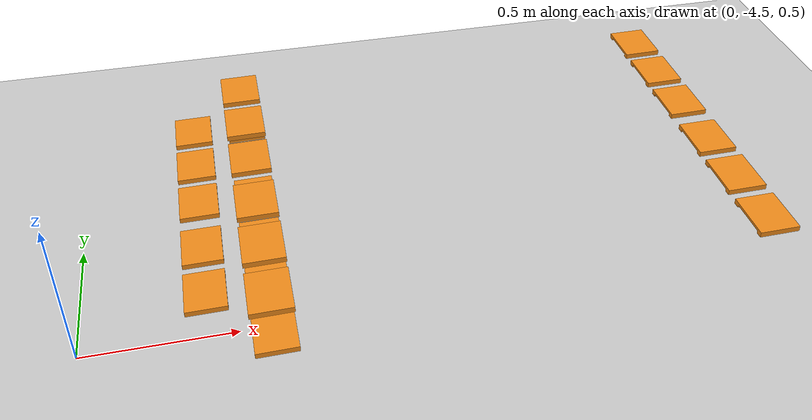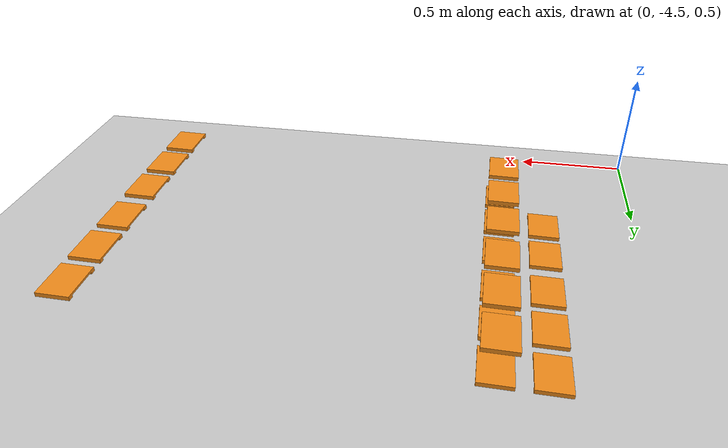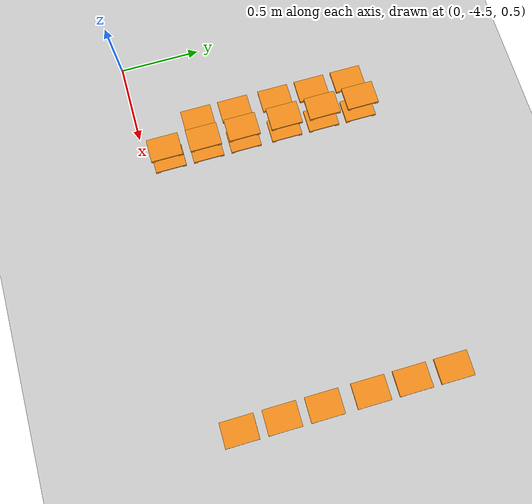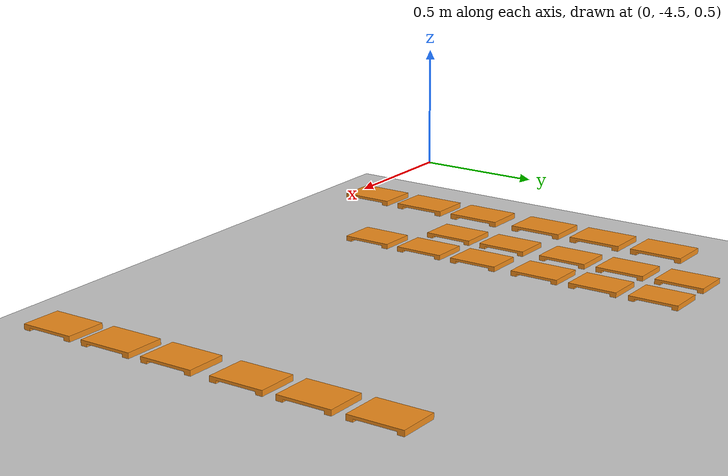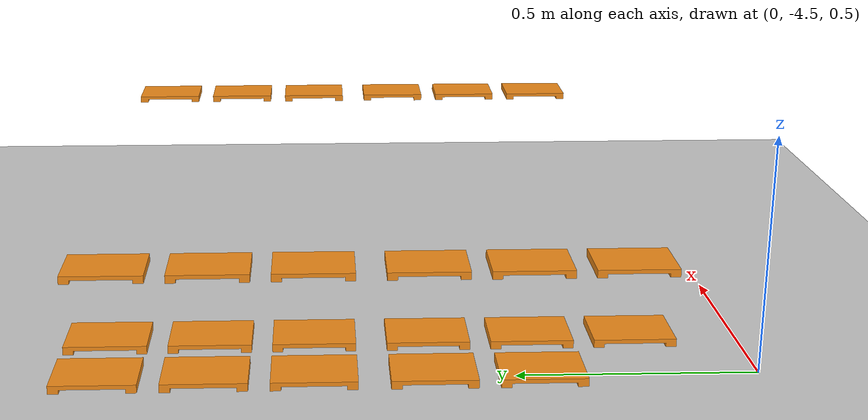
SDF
<sdf version="1.7">
 <world name="default">
  <model name="ground_plane">
   <static>1</static>
   <link name="link">
    <collision name="collision">
     <geometry><plane><normal>0 0 1</normal><size>100 100</size></plane></geometry>
     <surface>
      <contact><collide_bitmask>65535</collide_bitmask></contact>
      <friction><ode><mu>1</mu><mu2>1</mu2></ode></friction>
     </surface>
    </collision>
    <visual name="visual">
     <cast_shadows>0</cast_shadows>
     <geometry><plane><normal>0 0 1</normal><size>100 100</size></plane></geometry>
     <material>
      <script><uri>file://media/materials/scripts/gazebo.material</uri><name>Gazebo/Grey</name></script>
     </material>
    </visual>
   </link>
  </model>
  <model name="pallet_169">
   <pose>0.603676 -3.088 0.511043 -0 -0.012323 -7e-06</pose>
   <link name="link">
    <inertial>
     <pose>0 0 0 0 -0 1.571</pose>
     <inertia>
      <ixx>0.00220983</ixx>
      <ixy>0</ixy>
      <ixz>0</ixz>
      <iyy>0.00128087</iyy>
      <iyz>0</iyz>
      <izz>0.00244903</izz>
     </inertia>
     <mass>0.01</mass>
    </inertial>
    <visual name="visual1">
     <cast_shadows>0</cast_shadows>
     <geometry><mesh><uri>model://pallet/meshes/pallet.stl</uri></mesh></geometry>
     <material>
      <script><uri>file://media/materials/scripts/gazebo.material</uri><name>Gazebo/Orange</name></script>
      <shader type="pixel"><normal_map>__default__</normal_map></shader>
      <emissive>0 0 0 1</emissive>
     </material>
     <pose>0 0 -0 0 -0 1.571</pose>
    </visual>
    <collision name="collision_0">
     <pose>0 0 0 0 -0 1.571</pose>
     <geometry><mesh><uri>model://pallet/meshes/pallet.stl</uri></mesh></geometry>
     <surface>
      <friction>
       <ode><mu>1</mu><mu2>1</mu2><fdir1>0 0 0</fdir1><slip1>0</slip1><slip2>0</slip2></ode>
       <torsional>
        <coefficient>1</coefficient>
        <patch_radius>0</patch_radius>
        <surface_radius>0</surface_radius>
        <use_patch_radius>1</use_patch_radius>
        <ode><slip>0</slip></ode>
       </torsional>
      </friction>
      <bounce><restitution_coefficient>0</restitution_coefficient><threshold>1e+06</threshold></bounce>
      <contact>
       <collide_without_contact>0</collide_without_contact>
       <collide_without_contact_bitmask>1</collide_without_contact_bitmask>
       <collide_bitmask>1</collide_bitmask>
       <ode>
        <soft_cfm>0</soft_cfm>
        <soft_erp>0.2</soft_erp>
        <kp>1e+13</kp>
        <kd>1</kd>
        <max_vel>0.01</max_vel>
        <min_depth>0</min_depth>
       </ode>
       <bullet>
        <split_impulse>1</split_impulse>
        <split_impulse_penetration_threshold>-0.01</split_impulse_penetration_threshold>
        <soft_cfm>0</soft_cfm>
        <soft_erp>0.2</soft_erp>
        <kp>1e+13</kp>
        <kd>1</kd>
       </bullet>
      </contact>
     </surface>
    </collision>
   </link>
   <static>0</static>
  </model>
  <model name="pallet_170">
   <pose>0.603676 -3.338 0.511039 4.2e-05 -0.012317 -3e-06</pose>
   <link name="link">
    <inertial>
     <pose>0 0 0 0 -0 1.571</pose>
     <inertia>
      <ixx>0.00220983</ixx>
      <ixy>0</ixy>
      <ixz>0</ixz>
      <iyy>0.00128087</iyy>
      <iyz>0</iyz>
      <izz>0.00244903</izz>
     </inertia>
     <mass>0.01</mass>
    </inertial>
    <visual name="visual1">
     <cast_shadows>0</cast_shadows>
     <geometry><mesh><uri>model://pallet/meshes/pallet.stl</uri></mesh></geometry>
     <material>
      <script><uri>file://media/materials/scripts/gazebo.material</uri><name>Gazebo/Orange</name></script>
      <shader type="pixel"><normal_map>__default__</normal_map></shader>
      <emissive>0 0 0 1</emissive>
     </material>
     <pose>0 0 -0 0 -0 1.571</pose>
    </visual>
    <collision name="collision_0">
     <pose>0 0 0 0 -0 1.571</pose>
     <geometry><mesh><uri>model://pallet/meshes/pallet.stl</uri></mesh></geometry>
     <surface>
      <friction>
       <ode><mu>1</mu><mu2>1</mu2><fdir1>0 0 0</fdir1><slip1>0</slip1><slip2>0</slip2></ode>
       <torsional>
        <coefficient>1</coefficient>
        <patch_radius>0</patch_radius>
        <surface_radius>0</surface_radius>
        <use_patch_radius>1</use_patch_radius>
        <ode><slip>0</slip></ode>
       </torsional>
      </friction>
      <bounce><restitution_coefficient>0</restitution_coefficient><threshold>1e+06</threshold></bounce>
      <contact>
       <collide_without_contact>0</collide_without_contact>
       <collide_without_contact_bitmask>1</collide_without_contact_bitmask>
       <collide_bitmask>1</collide_bitmask>
       <ode>
        <soft_cfm>0</soft_cfm>
        <soft_erp>0.2</soft_erp>
        <kp>1e+13</kp>
        <kd>1</kd>
        <max_vel>0.01</max_vel>
        <min_depth>0</min_depth>
       </ode>
       <bullet>
        <split_impulse>1</split_impulse>
        <split_impulse_penetration_threshold>-0.01</split_impulse_penetration_threshold>
        <soft_cfm>0</soft_cfm>
        <soft_erp>0.2</soft_erp>
        <kp>1e+13</kp>
        <kd>1</kd>
       </bullet>
      </contact>
     </surface>
    </collision>
   </link>
   <static>0</static>
  </model>
  <model name="pallet_171">
   <pose>0.603678 -3.588 0.511038 3.6e-05 -0.012316 3e-06</pose>
   <link name="link">
    <inertial>
     <pose>0 0 0 0 -0 1.571</pose>
     <inertia>
      <ixx>0.00220983</ixx>
      <ixy>0</ixy>
      <ixz>0</ixz>
      <iyy>0.00128087</iyy>
      <iyz>0</iyz>
      <izz>0.00244903</izz>
     </inertia>
     <mass>0.01</mass>
    </inertial>
    <visual name="visual1">
     <cast_shadows>0</cast_shadows>
     <geometry><mesh><uri>model://pallet/meshes/pallet.stl</uri></mesh></geometry>
     <material>
      <script><uri>file://media/materials/scripts/gazebo.material</uri><name>Gazebo/Orange</name></script>
      <shader type="pixel"><normal_map>__default__</normal_map></shader>
      <emissive>0 0 0 1</emissive>
     </material>
     <pose>0 0 -0 0 -0 1.571</pose>
    </visual>
    <collision name="collision_0">
     <pose>0 0 0 0 -0 1.571</pose>
     <geometry><mesh><uri>model://pallet/meshes/pallet.stl</uri></mesh></geometry>
     <surface>
      <friction>
       <ode><mu>1</mu><mu2>1</mu2><fdir1>0 0 0</fdir1><slip1>0</slip1><slip2>0</slip2></ode>
       <torsional>
        <coefficient>1</coefficient>
        <patch_radius>0</patch_radius>
        <surface_radius>0</surface_radius>
        <use_patch_radius>1</use_patch_radius>
        <ode><slip>0</slip></ode>
       </torsional>
      </friction>
      <bounce><restitution_coefficient>0</restitution_coefficient><threshold>1e+06</threshold></bounce>
      <contact>
       <collide_without_contact>0</collide_without_contact>
       <collide_without_contact_bitmask>1</collide_without_contact_bitmask>
       <collide_bitmask>1</collide_bitmask>
       <ode>
        <soft_cfm>0</soft_cfm>
        <soft_erp>0.2</soft_erp>
        <kp>1e+13</kp>
        <kd>1</kd>
        <max_vel>0.01</max_vel>
        <min_depth>0</min_depth>
       </ode>
       <bullet>
        <split_impulse>1</split_impulse>
        <split_impulse_penetration_threshold>-0.01</split_impulse_penetration_threshold>
        <soft_cfm>0</soft_cfm>
        <soft_erp>0.2</soft_erp>
        <kp>1e+13</kp>
        <kd>1</kd>
       </bullet>
      </contact>
     </surface>
    </collision>
   </link>
   <static>0</static>
  </model>
  <model name="pallet_172">
   <pose>0.603681 -3.8625 0.511034 3.7e-05 -0.012316 4e-06</pose>
   <link name="link">
    <inertial>
     <pose>0 0 0 0 -0 1.571</pose>
     <inertia>
      <ixx>0.00220983</ixx>
      <ixy>0</ixy>
      <ixz>0</ixz>
      <iyy>0.00128087</iyy>
      <iyz>0</iyz>
      <izz>0.00244903</izz>
     </inertia>
     <mass>0.01</mass>
    </inertial>
    <visual name="visual1">
     <cast_shadows>0</cast_shadows>
     <geometry><mesh><uri>model://pallet/meshes/pallet.stl</uri></mesh></geometry>
     <material>
      <script><uri>file://media/materials/scripts/gazebo.material</uri><name>Gazebo/Orange</name></script>
      <shader type="pixel"><normal_map>__default__</normal_map></shader>
      <emissive>0 0 0 1</emissive>
     </material>
     <pose>0 0 -0 0 -0 1.571</pose>
    </visual>
    <collision name="collision_0">
     <pose>0 0 0 0 -0 1.571</pose>
     <geometry><mesh><uri>model://pallet/meshes/pallet.stl</uri></mesh></geometry>
     <surface>
      <friction>
       <ode><mu>1</mu><mu2>1</mu2><fdir1>0 0 0</fdir1><slip1>0</slip1><slip2>0</slip2></ode>
       <torsional>
        <coefficient>1</coefficient>
        <patch_radius>0</patch_radius>
        <surface_radius>0</surface_radius>
        <use_patch_radius>1</use_patch_radius>
        <ode><slip>0</slip></ode>
       </torsional>
      </friction>
      <bounce><restitution_coefficient>0</restitution_coefficient><threshold>1e+06</threshold></bounce>
      <contact>
       <collide_without_contact>0</collide_without_contact>
       <collide_without_contact_bitmask>1</collide_without_contact_bitmask>
       <collide_bitmask>1</collide_bitmask>
       <ode>
        <soft_cfm>0</soft_cfm>
        <soft_erp>0.2</soft_erp>
        <kp>1e+13</kp>
        <kd>1</kd>
        <max_vel>0.01</max_vel>
        <min_depth>0</min_depth>
       </ode>
       <bullet>
        <split_impulse>1</split_impulse>
        <split_impulse_penetration_threshold>-0.01</split_impulse_penetration_threshold>
        <soft_cfm>0</soft_cfm>
        <soft_erp>0.2</soft_erp>
        <kp>1e+13</kp>
        <kd>1</kd>
       </bullet>
      </contact>
     </surface>
    </collision>
   </link>
   <static>0</static>
  </model>
  <model name="pallet_173">
   <pose>0.603684 -4.1125 0.511038 2.3e-05 -0.012318 2e-06</pose>
   <link name="link">
    <inertial>
     <pose>0 0 0 0 -0 1.571</pose>
     <inertia>
      <ixx>0.00220983</ixx>
      <ixy>0</ixy>
      <ixz>0</ixz>
      <iyy>0.00128087</iyy>
      <iyz>0</iyz>
      <izz>0.00244903</izz>
     </inertia>
     <mass>0.01</mass>
    </inertial>
    <visual name="visual1">
     <cast_shadows>0</cast_shadows>
     <geometry><mesh><uri>model://pallet/meshes/pallet.stl</uri></mesh></geometry>
     <material>
      <script><uri>file://media/materials/scripts/gazebo.material</uri><name>Gazebo/Orange</name></script>
      <shader type="pixel"><normal_map>__default__</normal_map></shader>
      <emissive>0 0 0 1</emissive>
     </material>
     <pose>0 0 -0 0 -0 1.571</pose>
    </visual>
    <collision name="collision_0">
     <pose>0 0 0 0 -0 1.571</pose>
     <geometry><mesh><uri>model://pallet/meshes/pallet.stl</uri></mesh></geometry>
     <surface>
      <friction>
       <ode><mu>1</mu><mu2>1</mu2><fdir1>0 0 0</fdir1><slip1>0</slip1><slip2>0</slip2></ode>
       <torsional>
        <coefficient>1</coefficient>
        <patch_radius>0</patch_radius>
        <surface_radius>0</surface_radius>
        <use_patch_radius>1</use_patch_radius>
        <ode><slip>0</slip></ode>
       </torsional>
      </friction>
      <bounce><restitution_coefficient>0</restitution_coefficient><threshold>1e+06</threshold></bounce>
      <contact>
       <collide_without_contact>0</collide_without_contact>
       <collide_without_contact_bitmask>1</collide_without_contact_bitmask>
       <collide_bitmask>1</collide_bitmask>
       <ode>
        <soft_cfm>0</soft_cfm>
        <soft_erp>0.2</soft_erp>
        <kp>1e+13</kp>
        <kd>1</kd>
        <max_vel>0.01</max_vel>
        <min_depth>0</min_depth>
       </ode>
       <bullet>
        <split_impulse>1</split_impulse>
        <split_impulse_penetration_threshold>-0.01</split_impulse_penetration_threshold>
        <soft_cfm>0</soft_cfm>
        <soft_erp>0.2</soft_erp>
        <kp>1e+13</kp>
        <kd>1</kd>
       </bullet>
      </contact>
     </surface>
    </collision>
   </link>
   <static>0</static>
  </model>
  <model name="pallet_174">
   <pose>0.603686 -4.3625 0.511039 2.2e-05 -0.012316 9e-06</pose>
   <link name="link">
    <inertial>
     <pose>0 0 0 0 -0 1.571</pose>
     <inertia>
      <ixx>0.00220983</ixx>
      <ixy>0</ixy>
      <ixz>0</ixz>
      <iyy>0.00128087</iyy>
      <iyz>0</iyz>
      <izz>0.00244903</izz>
     </inertia>
     <mass>0.01</mass>
    </inertial>
    <visual name="visual1">
     <cast_shadows>0</cast_shadows>
     <geometry><mesh><uri>model://pallet/meshes/pallet.stl</uri></mesh></geometry>
     <material>
      <script><uri>file://media/materials/scripts/gazebo.material</uri><name>Gazebo/Orange</name></script>
      <shader type="pixel"><normal_map>__default__</normal_map></shader>
      <emissive>0 0 0 1</emissive>
     </material>
     <pose>0 0 -0 0 -0 1.571</pose>
    </visual>
    <collision name="collision_0">
     <pose>0 0 0 0 -0 1.571</pose>
     <geometry><mesh><uri>model://pallet/meshes/pallet.stl</uri></mesh></geometry>
     <surface>
      <friction>
       <ode><mu>1</mu><mu2>1</mu2><fdir1>0 0 0</fdir1><slip1>0</slip1><slip2>0</slip2></ode>
       <torsional>
        <coefficient>1</coefficient>
        <patch_radius>0</patch_radius>
        <surface_radius>0</surface_radius>
        <use_patch_radius>1</use_patch_radius>
        <ode><slip>0</slip></ode>
       </torsional>
      </friction>
      <bounce><restitution_coefficient>0</restitution_coefficient><threshold>1e+06</threshold></bounce>
      <contact>
       <collide_without_contact>0</collide_without_contact>
       <collide_without_contact_bitmask>1</collide_without_contact_bitmask>
       <collide_bitmask>1</collide_bitmask>
       <ode>
        <soft_cfm>0</soft_cfm>
        <soft_erp>0.2</soft_erp>
        <kp>1e+13</kp>
        <kd>1</kd>
        <max_vel>0.01</max_vel>
        <min_depth>0</min_depth>
       </ode>
       <bullet>
        <split_impulse>1</split_impulse>
        <split_impulse_penetration_threshold>-0.01</split_impulse_penetration_threshold>
        <soft_cfm>0</soft_cfm>
        <soft_erp>0.2</soft_erp>
        <kp>1e+13</kp>
        <kd>1</kd>
       </bullet>
      </contact>
     </surface>
    </collision>
   </link>
   <static>0</static>
  </model>
  <model name="pallet_193">
   <pose>0.385741 -3.088 0.331012 4e-06 -0.012793 -3e-06</pose>
   <link name="link">
    <inertial>
     <pose>0 0 0 0 -0 1.571</pose>
     <inertia>
      <ixx>0.00220983</ixx>
      <ixy>0</ixy>
      <ixz>0</ixz>
      <iyy>0.00128087</iyy>
      <iyz>0</iyz>
      <izz>0.00244903</izz>
     </inertia>
     <mass>0.01</mass>
    </inertial>
    <visual name="visual1">
     <cast_shadows>0</cast_shadows>
     <geometry><mesh><uri>model://pallet/meshes/pallet.stl</uri></mesh></geometry>
     <material>
      <script><uri>file://media/materials/scripts/gazebo.material</uri><name>Gazebo/Orange</name></script>
      <shader type="pixel"><normal_map>__default__</normal_map></shader>
      <emissive>0 0 0 1</emissive>
     </material>
     <pose>0 0 -0 0 -0 1.571</pose>
    </visual>
    <collision name="collision_0">
     <pose>0 0 0 0 -0 1.571</pose>
     <geometry><mesh><uri>model://pallet/meshes/pallet.stl</uri></mesh></geometry>
     <surface>
      <friction>
       <ode><mu>1</mu><mu2>1</mu2><fdir1>0 0 0</fdir1><slip1>0</slip1><slip2>0</slip2></ode>
       <torsional>
        <coefficient>1</coefficient>
        <patch_radius>0</patch_radius>
        <surface_radius>0</surface_radius>
        <use_patch_radius>1</use_patch_radius>
        <ode><slip>0</slip></ode>
       </torsional>
      </friction>
      <bounce><restitution_coefficient>0</restitution_coefficient><threshold>1e+06</threshold></bounce>
      <contact>
       <collide_without_contact>0</collide_without_contact>
       <collide_without_contact_bitmask>1</collide_without_contact_bitmask>
       <collide_bitmask>1</collide_bitmask>
       <ode>
        <soft_cfm>0</soft_cfm>
        <soft_erp>0.2</soft_erp>
        <kp>1e+13</kp>
        <kd>1</kd>
        <max_vel>0.01</max_vel>
        <min_depth>0</min_depth>
       </ode>
       <bullet>
        <split_impulse>1</split_impulse>
        <split_impulse_penetration_threshold>-0.01</split_impulse_penetration_threshold>
        <soft_cfm>0</soft_cfm>
        <soft_erp>0.2</soft_erp>
        <kp>1e+13</kp>
        <kd>1</kd>
       </bullet>
      </contact>
     </surface>
    </collision>
   </link>
   <static>0</static>
  </model>
  <model name="pallet_194">
   <pose>0.385742 -3.338 0.331011 2.8e-05 -0.012784 4e-06</pose>
   <link name="link">
    <inertial>
     <pose>0 0 0 0 -0 1.571</pose>
     <inertia>
      <ixx>0.00220983</ixx>
      <ixy>0</ixy>
      <ixz>0</ixz>
      <iyy>0.00128087</iyy>
      <iyz>0</iyz>
      <izz>0.00244903</izz>
     </inertia>
     <mass>0.01</mass>
    </inertial>
    <visual name="visual1">
     <cast_shadows>0</cast_shadows>
     <geometry><mesh><uri>model://pallet/meshes/pallet.stl</uri></mesh></geometry>
     <material>
      <script><uri>file://media/materials/scripts/gazebo.material</uri><name>Gazebo/Orange</name></script>
      <shader type="pixel"><normal_map>__default__</normal_map></shader>
      <emissive>0 0 0 1</emissive>
     </material>
     <pose>0 0 -0 0 -0 1.571</pose>
    </visual>
    <collision name="collision_0">
     <pose>0 0 0 0 -0 1.571</pose>
     <geometry><mesh><uri>model://pallet/meshes/pallet.stl</uri></mesh></geometry>
     <surface>
      <friction>
       <ode><mu>1</mu><mu2>1</mu2><fdir1>0 0 0</fdir1><slip1>0</slip1><slip2>0</slip2></ode>
       <torsional>
        <coefficient>1</coefficient>
        <patch_radius>0</patch_radius>
        <surface_radius>0</surface_radius>
        <use_patch_radius>1</use_patch_radius>
        <ode><slip>0</slip></ode>
       </torsional>
      </friction>
      <bounce><restitution_coefficient>0</restitution_coefficient><threshold>1e+06</threshold></bounce>
      <contact>
       <collide_without_contact>0</collide_without_contact>
       <collide_without_contact_bitmask>1</collide_without_contact_bitmask>
       <collide_bitmask>1</collide_bitmask>
       <ode>
        <soft_cfm>0</soft_cfm>
        <soft_erp>0.2</soft_erp>
        <kp>1e+13</kp>
        <kd>1</kd>
        <max_vel>0.01</max_vel>
        <min_depth>0</min_depth>
       </ode>
       <bullet>
        <split_impulse>1</split_impulse>
        <split_impulse_penetration_threshold>-0.01</split_impulse_penetration_threshold>
        <soft_cfm>0</soft_cfm>
        <soft_erp>0.2</soft_erp>
        <kp>1e+13</kp>
        <kd>1</kd>
       </bullet>
      </contact>
     </surface>
    </collision>
   </link>
   <static>0</static>
  </model>
  <model name="pallet_195">
   <pose>0.385744 -3.588 0.331011 4.2e-05 -0.012783 4e-06</pose>
   <link name="link">
    <inertial>
     <pose>0 0 0 0 -0 1.571</pose>
     <inertia>
      <ixx>0.00220983</ixx>
      <ixy>0</ixy>
      <ixz>0</ixz>
      <iyy>0.00128087</iyy>
      <iyz>0</iyz>
      <izz>0.00244903</izz>
     </inertia>
     <mass>0.01</mass>
    </inertial>
    <visual name="visual1">
     <cast_shadows>0</cast_shadows>
     <geometry><mesh><uri>model://pallet/meshes/pallet.stl</uri></mesh></geometry>
     <material>
      <script><uri>file://media/materials/scripts/gazebo.material</uri><name>Gazebo/Orange</name></script>
      <shader type="pixel"><normal_map>__default__</normal_map></shader>
      <emissive>0 0 0 1</emissive>
     </material>
     <pose>0 0 -0 0 -0 1.571</pose>
    </visual>
    <collision name="collision_0">
     <pose>0 0 0 0 -0 1.571</pose>
     <geometry><mesh><uri>model://pallet/meshes/pallet.stl</uri></mesh></geometry>
     <surface>
      <friction>
       <ode><mu>1</mu><mu2>1</mu2><fdir1>0 0 0</fdir1><slip1>0</slip1><slip2>0</slip2></ode>
       <torsional>
        <coefficient>1</coefficient>
        <patch_radius>0</patch_radius>
        <surface_radius>0</surface_radius>
        <use_patch_radius>1</use_patch_radius>
        <ode><slip>0</slip></ode>
       </torsional>
      </friction>
      <bounce><restitution_coefficient>0</restitution_coefficient><threshold>1e+06</threshold></bounce>
      <contact>
       <collide_without_contact>0</collide_without_contact>
       <collide_without_contact_bitmask>1</collide_without_contact_bitmask>
       <collide_bitmask>1</collide_bitmask>
       <ode>
        <soft_cfm>0</soft_cfm>
        <soft_erp>0.2</soft_erp>
        <kp>1e+13</kp>
        <kd>1</kd>
        <max_vel>0.01</max_vel>
        <min_depth>0</min_depth>
       </ode>
       <bullet>
        <split_impulse>1</split_impulse>
        <split_impulse_penetration_threshold>-0.01</split_impulse_penetration_threshold>
        <soft_cfm>0</soft_cfm>
        <soft_erp>0.2</soft_erp>
        <kp>1e+13</kp>
        <kd>1</kd>
       </bullet>
      </contact>
     </surface>
    </collision>
   </link>
   <static>0</static>
  </model>
  <model name="pallet_196">
   <pose>0.385746 -3.8625 0.331012 4e-06 -0.012784 4e-06</pose>
   <link name="link">
    <inertial>
     <pose>0 0 0 0 -0 1.571</pose>
     <inertia>
      <ixx>0.00220983</ixx>
      <ixy>0</ixy>
      <ixz>0</ixz>
      <iyy>0.00128087</iyy>
      <iyz>0</iyz>
      <izz>0.00244903</izz>
     </inertia>
     <mass>0.01</mass>
    </inertial>
    <visual name="visual1">
     <cast_shadows>0</cast_shadows>
     <geometry><mesh><uri>model://pallet/meshes/pallet.stl</uri></mesh></geometry>
     <material>
      <script><uri>file://media/materials/scripts/gazebo.material</uri><name>Gazebo/Orange</name></script>
      <shader type="pixel"><normal_map>__default__</normal_map></shader>
      <emissive>0 0 0 1</emissive>
     </material>
     <pose>0 0 -0 0 -0 1.571</pose>
    </visual>
    <collision name="collision_0">
     <pose>0 0 0 0 -0 1.571</pose>
     <geometry><mesh><uri>model://pallet/meshes/pallet.stl</uri></mesh></geometry>
     <surface>
      <friction>
       <ode><mu>1</mu><mu2>1</mu2><fdir1>0 0 0</fdir1><slip1>0</slip1><slip2>0</slip2></ode>
       <torsional>
        <coefficient>1</coefficient>
        <patch_radius>0</patch_radius>
        <surface_radius>0</surface_radius>
        <use_patch_radius>1</use_patch_radius>
        <ode><slip>0</slip></ode>
       </torsional>
      </friction>
      <bounce><restitution_coefficient>0</restitution_coefficient><threshold>1e+06</threshold></bounce>
      <contact>
       <collide_without_contact>0</collide_without_contact>
       <collide_without_contact_bitmask>1</collide_without_contact_bitmask>
       <collide_bitmask>1</collide_bitmask>
       <ode>
        <soft_cfm>0</soft_cfm>
        <soft_erp>0.2</soft_erp>
        <kp>1e+13</kp>
        <kd>1</kd>
        <max_vel>0.01</max_vel>
        <min_depth>0</min_depth>
       </ode>
       <bullet>
        <split_impulse>1</split_impulse>
        <split_impulse_penetration_threshold>-0.01</split_impulse_penetration_threshold>
        <soft_cfm>0</soft_cfm>
        <soft_erp>0.2</soft_erp>
        <kp>1e+13</kp>
        <kd>1</kd>
       </bullet>
      </contact>
     </surface>
    </collision>
   </link>
   <static>0</static>
  </model>
  <model name="pallet_197">
   <pose>0.385748 -4.1125 0.33101 3.4e-05 -0.012783 6e-06</pose>
   <link name="link">
    <inertial>
     <pose>0 0 0 0 -0 1.571</pose>
     <inertia>
      <ixx>0.00220983</ixx>
      <ixy>0</ixy>
      <ixz>0</ixz>
      <iyy>0.00128087</iyy>
      <iyz>0</iyz>
      <izz>0.00244903</izz>
     </inertia>
     <mass>0.01</mass>
    </inertial>
    <visual name="visual1">
     <cast_shadows>0</cast_shadows>
     <geometry><mesh><uri>model://pallet/meshes/pallet.stl</uri></mesh></geometry>
     <material>
      <script><uri>file://media/materials/scripts/gazebo.material</uri><name>Gazebo/Orange</name></script>
      <shader type="pixel"><normal_map>__default__</normal_map></shader>
      <emissive>0 0 0 1</emissive>
     </material>
     <pose>0 0 -0 0 -0 1.571</pose>
    </visual>
    <collision name="collision_0">
     <pose>0 0 0 0 -0 1.571</pose>
     <geometry><mesh><uri>model://pallet/meshes/pallet.stl</uri></mesh></geometry>
     <surface>
      <friction>
       <ode><mu>1</mu><mu2>1</mu2><fdir1>0 0 0</fdir1><slip1>0</slip1><slip2>0</slip2></ode>
       <torsional>
        <coefficient>1</coefficient>
        <patch_radius>0</patch_radius>
        <surface_radius>0</surface_radius>
        <use_patch_radius>1</use_patch_radius>
        <ode><slip>0</slip></ode>
       </torsional>
      </friction>
      <bounce><restitution_coefficient>0</restitution_coefficient><threshold>1e+06</threshold></bounce>
      <contact>
       <collide_without_contact>0</collide_without_contact>
       <collide_without_contact_bitmask>1</collide_without_contact_bitmask>
       <collide_bitmask>1</collide_bitmask>
       <ode>
        <soft_cfm>0</soft_cfm>
        <soft_erp>0.2</soft_erp>
        <kp>1e+13</kp>
        <kd>1</kd>
        <max_vel>0.01</max_vel>
        <min_depth>0</min_depth>
       </ode>
       <bullet>
        <split_impulse>1</split_impulse>
        <split_impulse_penetration_threshold>-0.01</split_impulse_penetration_threshold>
        <soft_cfm>0</soft_cfm>
        <soft_erp>0.2</soft_erp>
        <kp>1e+13</kp>
        <kd>1</kd>
       </bullet>
      </contact>
     </surface>
    </collision>
   </link>
   <static>0</static>
  </model>
  <model name="pallet_205">
   <pose>0.605893 -3.088 0.331056 5e-06 -0.012321 -4e-06</pose>
   <link name="link">
    <inertial>
     <pose>0 0 0 0 -0 1.571</pose>
     <inertia>
      <ixx>0.00220983</ixx>
      <ixy>0</ixy>
      <ixz>0</ixz>
      <iyy>0.00128087</iyy>
      <iyz>0</iyz>
      <izz>0.00244903</izz>
     </inertia>
     <mass>0.01</mass>
    </inertial>
    <visual name="visual1">
     <cast_shadows>0</cast_shadows>
     <geometry><mesh><uri>model://pallet/meshes/pallet.stl</uri></mesh></geometry>
     <material>
      <script><uri>file://media/materials/scripts/gazebo.material</uri><name>Gazebo/Orange</name></script>
      <shader type="pixel"><normal_map>__default__</normal_map></shader>
      <emissive>0 0 0 1</emissive>
     </material>
     <pose>0 0 -0 0 -0 1.571</pose>
    </visual>
    <collision name="collision_0">
     <pose>0 0 0 0 -0 1.571</pose>
     <geometry><mesh><uri>model://pallet/meshes/pallet.stl</uri></mesh></geometry>
     <surface>
      <friction>
       <ode><mu>1</mu><mu2>1</mu2><fdir1>0 0 0</fdir1><slip1>0</slip1><slip2>0</slip2></ode>
       <torsional>
        <coefficient>1</coefficient>
        <patch_radius>0</patch_radius>
        <surface_radius>0</surface_radius>
        <use_patch_radius>1</use_patch_radius>
        <ode><slip>0</slip></ode>
       </torsional>
      </friction>
      <bounce><restitution_coefficient>0</restitution_coefficient><threshold>1e+06</threshold></bounce>
      <contact>
       <collide_without_contact>0</collide_without_contact>
       <collide_without_contact_bitmask>1</collide_without_contact_bitmask>
       <collide_bitmask>1</collide_bitmask>
       <ode>
        <soft_cfm>0</soft_cfm>
        <soft_erp>0.2</soft_erp>
        <kp>1e+13</kp>
        <kd>1</kd>
        <max_vel>0.01</max_vel>
        <min_depth>0</min_depth>
       </ode>
       <bullet>
        <split_impulse>1</split_impulse>
        <split_impulse_penetration_threshold>-0.01</split_impulse_penetration_threshold>
        <soft_cfm>0</soft_cfm>
        <soft_erp>0.2</soft_erp>
        <kp>1e+13</kp>
        <kd>1</kd>
       </bullet>
      </contact>
     </surface>
    </collision>
   </link>
   <static>0</static>
  </model>
  <model name="pallet_206">
   <pose>0.605894 -3.338 0.331053 3.5e-05 -0.012317 3e-06</pose>
   <link name="link">
    <inertial>
     <pose>0 0 0 0 -0 1.571</pose>
     <inertia>
      <ixx>0.00220983</ixx>
      <ixy>0</ixy>
      <ixz>0</ixz>
      <iyy>0.00128087</iyy>
      <iyz>0</iyz>
      <izz>0.00244903</izz>
     </inertia>
     <mass>0.01</mass>
    </inertial>
    <visual name="visual1">
     <cast_shadows>0</cast_shadows>
     <geometry><mesh><uri>model://pallet/meshes/pallet.stl</uri></mesh></geometry>
     <material>
      <script><uri>file://media/materials/scripts/gazebo.material</uri><name>Gazebo/Orange</name></script>
      <shader type="pixel"><normal_map>__default__</normal_map></shader>
      <emissive>0 0 0 1</emissive>
     </material>
     <pose>0 0 -0 0 -0 1.571</pose>
    </visual>
    <collision name="collision_0">
     <pose>0 0 0 0 -0 1.571</pose>
     <geometry><mesh><uri>model://pallet/meshes/pallet.stl</uri></mesh></geometry>
     <surface>
      <friction>
       <ode><mu>1</mu><mu2>1</mu2><fdir1>0 0 0</fdir1><slip1>0</slip1><slip2>0</slip2></ode>
       <torsional>
        <coefficient>1</coefficient>
        <patch_radius>0</patch_radius>
        <surface_radius>0</surface_radius>
        <use_patch_radius>1</use_patch_radius>
        <ode><slip>0</slip></ode>
       </torsional>
      </friction>
      <bounce><restitution_coefficient>0</restitution_coefficient><threshold>1e+06</threshold></bounce>
      <contact>
       <collide_without_contact>0</collide_without_contact>
       <collide_without_contact_bitmask>1</collide_without_contact_bitmask>
       <collide_bitmask>1</collide_bitmask>
       <ode>
        <soft_cfm>0</soft_cfm>
        <soft_erp>0.2</soft_erp>
        <kp>1e+13</kp>
        <kd>1</kd>
        <max_vel>0.01</max_vel>
        <min_depth>0</min_depth>
       </ode>
       <bullet>
        <split_impulse>1</split_impulse>
        <split_impulse_penetration_threshold>-0.01</split_impulse_penetration_threshold>
        <soft_cfm>0</soft_cfm>
        <soft_erp>0.2</soft_erp>
        <kp>1e+13</kp>
        <kd>1</kd>
       </bullet>
      </contact>
     </surface>
    </collision>
   </link>
   <static>0</static>
  </model>
  <model name="pallet_207">
   <pose>0.605897 -3.588 0.331052 4.2e-05 -0.012318 5e-06</pose>
   <link name="link">
    <inertial>
     <pose>0 0 0 0 -0 1.571</pose>
     <inertia>
      <ixx>0.00220983</ixx>
      <ixy>0</ixy>
      <ixz>0</ixz>
      <iyy>0.00128087</iyy>
      <iyz>0</iyz>
      <izz>0.00244903</izz>
     </inertia>
     <mass>0.01</mass>
    </inertial>
    <visual name="visual1">
     <cast_shadows>0</cast_shadows>
     <geometry><mesh><uri>model://pallet/meshes/pallet.stl</uri></mesh></geometry>
     <material>
      <script><uri>file://media/materials/scripts/gazebo.material</uri><name>Gazebo/Orange</name></script>
      <shader type="pixel"><normal_map>__default__</normal_map></shader>
      <emissive>0 0 0 1</emissive>
     </material>
     <pose>0 0 -0 0 -0 1.571</pose>
    </visual>
    <collision name="collision_0">
     <pose>0 0 0 0 -0 1.571</pose>
     <geometry><mesh><uri>model://pallet/meshes/pallet.stl</uri></mesh></geometry>
     <surface>
      <friction>
       <ode><mu>1</mu><mu2>1</mu2><fdir1>0 0 0</fdir1><slip1>0</slip1><slip2>0</slip2></ode>
       <torsional>
        <coefficient>1</coefficient>
        <patch_radius>0</patch_radius>
        <surface_radius>0</surface_radius>
        <use_patch_radius>1</use_patch_radius>
        <ode><slip>0</slip></ode>
       </torsional>
      </friction>
      <bounce><restitution_coefficient>0</restitution_coefficient><threshold>1e+06</threshold></bounce>
      <contact>
       <collide_without_contact>0</collide_without_contact>
       <collide_without_contact_bitmask>1</collide_without_contact_bitmask>
       <collide_bitmask>1</collide_bitmask>
       <ode>
        <soft_cfm>0</soft_cfm>
        <soft_erp>0.2</soft_erp>
        <kp>1e+13</kp>
        <kd>1</kd>
        <max_vel>0.01</max_vel>
        <min_depth>0</min_depth>
       </ode>
       <bullet>
        <split_impulse>1</split_impulse>
        <split_impulse_penetration_threshold>-0.01</split_impulse_penetration_threshold>
        <soft_cfm>0</soft_cfm>
        <soft_erp>0.2</soft_erp>
        <kp>1e+13</kp>
        <kd>1</kd>
       </bullet>
      </contact>
     </surface>
    </collision>
   </link>
   <static>0</static>
  </model>
  <model name="pallet_208">
   <pose>0.605899 -3.8625 0.331055 2e-06 -0.01232 4e-06</pose>
   <link name="link">
    <inertial>
     <pose>0 0 0 0 -0 1.571</pose>
     <inertia>
      <ixx>0.00220983</ixx>
      <ixy>0</ixy>
      <ixz>0</ixz>
      <iyy>0.00128087</iyy>
      <iyz>0</iyz>
      <izz>0.00244903</izz>
     </inertia>
     <mass>0.01</mass>
    </inertial>
    <visual name="visual1">
     <cast_shadows>0</cast_shadows>
     <geometry><mesh><uri>model://pallet/meshes/pallet.stl</uri></mesh></geometry>
     <material>
      <script><uri>file://media/materials/scripts/gazebo.material</uri><name>Gazebo/Orange</name></script>
      <shader type="pixel"><normal_map>__default__</normal_map></shader>
      <emissive>0 0 0 1</emissive>
     </material>
     <pose>0 0 -0 0 -0 1.571</pose>
    </visual>
    <collision name="collision_0">
     <pose>0 0 0 0 -0 1.571</pose>
     <geometry><mesh><uri>model://pallet/meshes/pallet.stl</uri></mesh></geometry>
     <surface>
      <friction>
       <ode><mu>1</mu><mu2>1</mu2><fdir1>0 0 0</fdir1><slip1>0</slip1><slip2>0</slip2></ode>
       <torsional>
        <coefficient>1</coefficient>
        <patch_radius>0</patch_radius>
        <surface_radius>0</surface_radius>
        <use_patch_radius>1</use_patch_radius>
        <ode><slip>0</slip></ode>
       </torsional>
      </friction>
      <bounce><restitution_coefficient>0</restitution_coefficient><threshold>1e+06</threshold></bounce>
      <contact>
       <collide_without_contact>0</collide_without_contact>
       <collide_without_contact_bitmask>1</collide_without_contact_bitmask>
       <collide_bitmask>1</collide_bitmask>
       <ode>
        <soft_cfm>0</soft_cfm>
        <soft_erp>0.2</soft_erp>
        <kp>1e+13</kp>
        <kd>1</kd>
        <max_vel>0.01</max_vel>
        <min_depth>0</min_depth>
       </ode>
       <bullet>
        <split_impulse>1</split_impulse>
        <split_impulse_penetration_threshold>-0.01</split_impulse_penetration_threshold>
        <soft_cfm>0</soft_cfm>
        <soft_erp>0.2</soft_erp>
        <kp>1e+13</kp>
        <kd>1</kd>
       </bullet>
      </contact>
     </surface>
    </collision>
   </link>
   <static>0</static>
  </model>
  <model name="pallet_209">
   <pose>0.605902 -4.1125 0.331053 1.3e-05 -0.012317 5e-06</pose>
   <link name="link">
    <inertial>
     <pose>0 0 0 0 -0 1.571</pose>
     <inertia>
      <ixx>0.00220983</ixx>
      <ixy>0</ixy>
      <ixz>0</ixz>
      <iyy>0.00128087</iyy>
      <iyz>0</iyz>
      <izz>0.00244903</izz>
     </inertia>
     <mass>0.01</mass>
    </inertial>
    <visual name="visual1">
     <cast_shadows>0</cast_shadows>
     <geometry><mesh><uri>model://pallet/meshes/pallet.stl</uri></mesh></geometry>
     <material>
      <script><uri>file://media/materials/scripts/gazebo.material</uri><name>Gazebo/Orange</name></script>
      <shader type="pixel"><normal_map>__default__</normal_map></shader>
      <emissive>0 0 0 1</emissive>
     </material>
     <pose>0 0 -0 0 -0 1.571</pose>
    </visual>
    <collision name="collision_0">
     <pose>0 0 0 0 -0 1.571</pose>
     <geometry><mesh><uri>model://pallet/meshes/pallet.stl</uri></mesh></geometry>
     <surface>
      <friction>
       <ode><mu>1</mu><mu2>1</mu2><fdir1>0 0 0</fdir1><slip1>0</slip1><slip2>0</slip2></ode>
       <torsional>
        <coefficient>1</coefficient>
        <patch_radius>0</patch_radius>
        <surface_radius>0</surface_radius>
        <use_patch_radius>1</use_patch_radius>
        <ode><slip>0</slip></ode>
       </torsional>
      </friction>
      <bounce><restitution_coefficient>0</restitution_coefficient><threshold>1e+06</threshold></bounce>
      <contact>
       <collide_without_contact>0</collide_without_contact>
       <collide_without_contact_bitmask>1</collide_without_contact_bitmask>
       <collide_bitmask>1</collide_bitmask>
       <ode>
        <soft_cfm>0</soft_cfm>
        <soft_erp>0.2</soft_erp>
        <kp>1e+13</kp>
        <kd>1</kd>
        <max_vel>0.01</max_vel>
        <min_depth>0</min_depth>
       </ode>
       <bullet>
        <split_impulse>1</split_impulse>
        <split_impulse_penetration_threshold>-0.01</split_impulse_penetration_threshold>
        <soft_cfm>0</soft_cfm>
        <soft_erp>0.2</soft_erp>
        <kp>1e+13</kp>
        <kd>1</kd>
       </bullet>
      </contact>
     </surface>
    </collision>
   </link>
   <static>0</static>
  </model>
  <model name="pallet_210">
   <pose>0.605904 -4.3625 0.331052 2.3e-05 -0.012317 8e-06</pose>
   <link name="link">
    <inertial>
     <pose>0 0 0 0 -0 1.571</pose>
     <inertia>
      <ixx>0.00220983</ixx>
      <ixy>0</ixy>
      <ixz>0</ixz>
      <iyy>0.00128087</iyy>
      <iyz>0</iyz>
      <izz>0.00244903</izz>
     </inertia>
     <mass>0.01</mass>
    </inertial>
    <visual name="visual1">
     <cast_shadows>0</cast_shadows>
     <geometry><mesh><uri>model://pallet/meshes/pallet.stl</uri></mesh></geometry>
     <material>
      <script><uri>file://media/materials/scripts/gazebo.material</uri><name>Gazebo/Orange</name></script>
      <shader type="pixel"><normal_map>__default__</normal_map></shader>
      <emissive>0 0 0 1</emissive>
     </material>
     <pose>0 0 -0 0 -0 1.571</pose>
    </visual>
    <collision name="collision_0">
     <pose>0 0 0 0 -0 1.571</pose>
     <geometry><mesh><uri>model://pallet/meshes/pallet.stl</uri></mesh></geometry>
     <surface>
      <friction>
       <ode><mu>1</mu><mu2>1</mu2><fdir1>0 0 0</fdir1><slip1>0</slip1><slip2>0</slip2></ode>
       <torsional>
        <coefficient>1</coefficient>
        <patch_radius>0</patch_radius>
        <surface_radius>0</surface_radius>
        <use_patch_radius>1</use_patch_radius>
        <ode><slip>0</slip></ode>
       </torsional>
      </friction>
      <bounce><restitution_coefficient>0</restitution_coefficient><threshold>1e+06</threshold></bounce>
      <contact>
       <collide_without_contact>0</collide_without_contact>
       <collide_without_contact_bitmask>1</collide_without_contact_bitmask>
       <collide_bitmask>1</collide_bitmask>
       <ode>
        <soft_cfm>0</soft_cfm>
        <soft_erp>0.2</soft_erp>
        <kp>1e+13</kp>
        <kd>1</kd>
        <max_vel>0.01</max_vel>
        <min_depth>0</min_depth>
       </ode>
       <bullet>
        <split_impulse>1</split_impulse>
        <split_impulse_penetration_threshold>-0.01</split_impulse_penetration_threshold>
        <soft_cfm>0</soft_cfm>
        <soft_erp>0.2</soft_erp>
        <kp>1e+13</kp>
        <kd>1</kd>
       </bullet>
      </contact>
     </surface>
    </collision>
   </link>
   <static>0</static>
  </model>
  <model name="pallet_241">
   <pose>2.38328 -3.088 0.510979 3e-06 -0.013092 -1e-06</pose>
   <link name="link">
    <inertial>
     <pose>0 0 0 0 -0 1.571</pose>
     <inertia>
      <ixx>0.00220983</ixx>
      <ixy>0</ixy>
      <ixz>0</ixz>
      <iyy>0.00128087</iyy>
      <iyz>0</iyz>
      <izz>0.00244903</izz>
     </inertia>
     <mass>0.01</mass>
    </inertial>
    <visual name="visual1">
     <cast_shadows>0</cast_shadows>
     <geometry><mesh><uri>model://pallet/meshes/pallet.stl</uri></mesh></geometry>
     <material>
      <script><uri>file://media/materials/scripts/gazebo.material</uri><name>Gazebo/Orange</name></script>
      <shader type="pixel"><normal_map>__default__</normal_map></shader>
      <emissive>0 0 0 1</emissive>
     </material>
     <pose>0 0 -0 0 -0 1.571</pose>
    </visual>
    <collision name="collision_0">
     <pose>0 0 0 0 -0 1.571</pose>
     <geometry><mesh><uri>model://pallet/meshes/pallet.stl</uri></mesh></geometry>
     <surface>
      <friction>
       <ode><mu>1</mu><mu2>1</mu2><fdir1>0 0 0</fdir1><slip1>0</slip1><slip2>0</slip2></ode>
       <torsional>
        <coefficient>1</coefficient>
        <patch_radius>0</patch_radius>
        <surface_radius>0</surface_radius>
        <use_patch_radius>1</use_patch_radius>
        <ode><slip>0</slip></ode>
       </torsional>
      </friction>
      <bounce><restitution_coefficient>0</restitution_coefficient><threshold>1e+06</threshold></bounce>
      <contact>
       <collide_without_contact>0</collide_without_contact>
       <collide_without_contact_bitmask>1</collide_without_contact_bitmask>
       <collide_bitmask>1</collide_bitmask>
       <ode>
        <soft_cfm>0</soft_cfm>
        <soft_erp>0.2</soft_erp>
        <kp>1e+13</kp>
        <kd>1</kd>
        <max_vel>0.01</max_vel>
        <min_depth>0</min_depth>
       </ode>
       <bullet>
        <split_impulse>1</split_impulse>
        <split_impulse_penetration_threshold>-0.01</split_impulse_penetration_threshold>
        <soft_cfm>0</soft_cfm>
        <soft_erp>0.2</soft_erp>
        <kp>1e+13</kp>
        <kd>1</kd>
       </bullet>
      </contact>
     </surface>
    </collision>
   </link>
   <static>0</static>
  </model>
  <model name="pallet_242">
   <pose>2.38328 -3.338 0.510975 4.4e-05 -0.013086 7e-06</pose>
   <link name="link">
    <inertial>
     <pose>0 0 0 0 -0 1.571</pose>
     <inertia>
      <ixx>0.00220983</ixx>
      <ixy>0</ixy>
      <ixz>0</ixz>
      <iyy>0.00128087</iyy>
      <iyz>0</iyz>
      <izz>0.00244903</izz>
     </inertia>
     <mass>0.01</mass>
    </inertial>
    <visual name="visual1">
     <cast_shadows>0</cast_shadows>
     <geometry><mesh><uri>model://pallet/meshes/pallet.stl</uri></mesh></geometry>
     <material>
      <script><uri>file://media/materials/scripts/gazebo.material</uri><name>Gazebo/Orange</name></script>
      <shader type="pixel"><normal_map>__default__</normal_map></shader>
      <emissive>0 0 0 1</emissive>
     </material>
     <pose>0 0 -0 0 -0 1.571</pose>
    </visual>
    <collision name="collision_0">
     <pose>0 0 0 0 -0 1.571</pose>
     <geometry><mesh><uri>model://pallet/meshes/pallet.stl</uri></mesh></geometry>
     <surface>
      <friction>
       <ode><mu>1</mu><mu2>1</mu2><fdir1>0 0 0</fdir1><slip1>0</slip1><slip2>0</slip2></ode>
       <torsional>
        <coefficient>1</coefficient>
        <patch_radius>0</patch_radius>
        <surface_radius>0</surface_radius>
        <use_patch_radius>1</use_patch_radius>
        <ode><slip>0</slip></ode>
       </torsional>
      </friction>
      <bounce><restitution_coefficient>0</restitution_coefficient><threshold>1e+06</threshold></bounce>
      <contact>
       <collide_without_contact>0</collide_without_contact>
       <collide_without_contact_bitmask>1</collide_without_contact_bitmask>
       <collide_bitmask>1</collide_bitmask>
       <ode>
        <soft_cfm>0</soft_cfm>
        <soft_erp>0.2</soft_erp>
        <kp>1e+13</kp>
        <kd>1</kd>
        <max_vel>0.01</max_vel>
        <min_depth>0</min_depth>
       </ode>
       <bullet>
        <split_impulse>1</split_impulse>
        <split_impulse_penetration_threshold>-0.01</split_impulse_penetration_threshold>
        <soft_cfm>0</soft_cfm>
        <soft_erp>0.2</soft_erp>
        <kp>1e+13</kp>
        <kd>1</kd>
       </bullet>
      </contact>
     </surface>
    </collision>
   </link>
   <static>0</static>
  </model>
  <model name="pallet_243">
   <pose>2.38328 -3.588 0.510974 4.2e-05 -0.013088 9e-06</pose>
   <link name="link">
    <inertial>
     <pose>0 0 0 0 -0 1.571</pose>
     <inertia>
      <ixx>0.00220983</ixx>
      <ixy>0</ixy>
      <ixz>0</ixz>
      <iyy>0.00128087</iyy>
      <iyz>0</iyz>
      <izz>0.00244903</izz>
     </inertia>
     <mass>0.01</mass>
    </inertial>
    <visual name="visual1">
     <cast_shadows>0</cast_shadows>
     <geometry><mesh><uri>model://pallet/meshes/pallet.stl</uri></mesh></geometry>
     <material>
      <script><uri>file://media/materials/scripts/gazebo.material</uri><name>Gazebo/Orange</name></script>
      <shader type="pixel"><normal_map>__default__</normal_map></shader>
      <emissive>0 0 0 1</emissive>
     </material>
     <pose>0 0 -0 0 -0 1.571</pose>
    </visual>
    <collision name="collision_0">
     <pose>0 0 0 0 -0 1.571</pose>
     <geometry><mesh><uri>model://pallet/meshes/pallet.stl</uri></mesh></geometry>
     <surface>
      <friction>
       <ode><mu>1</mu><mu2>1</mu2><fdir1>0 0 0</fdir1><slip1>0</slip1><slip2>0</slip2></ode>
       <torsional>
        <coefficient>1</coefficient>
        <patch_radius>0</patch_radius>
        <surface_radius>0</surface_radius>
        <use_patch_radius>1</use_patch_radius>
        <ode><slip>0</slip></ode>
       </torsional>
      </friction>
      <bounce><restitution_coefficient>0</restitution_coefficient><threshold>1e+06</threshold></bounce>
      <contact>
       <collide_without_contact>0</collide_without_contact>
       <collide_without_contact_bitmask>1</collide_without_contact_bitmask>
       <collide_bitmask>1</collide_bitmask>
       <ode>
        <soft_cfm>0</soft_cfm>
        <soft_erp>0.2</soft_erp>
        <kp>1e+13</kp>
        <kd>1</kd>
        <max_vel>0.01</max_vel>
        <min_depth>0</min_depth>
       </ode>
       <bullet>
        <split_impulse>1</split_impulse>
        <split_impulse_penetration_threshold>-0.01</split_impulse_penetration_threshold>
        <soft_cfm>0</soft_cfm>
        <soft_erp>0.2</soft_erp>
        <kp>1e+13</kp>
        <kd>1</kd>
       </bullet>
      </contact>
     </surface>
    </collision>
   </link>
   <static>0</static>
  </model>
  <model name="pallet_244">
   <pose>2.38329 -3.8625 0.510975 1.2e-05 -0.013088 6e-06</pose>
   <link name="link">
    <inertial>
     <pose>0 0 0 0 -0 1.571</pose>
     <inertia>
      <ixx>0.00220983</ixx>
      <ixy>0</ixy>
      <ixz>0</ixz>
      <iyy>0.00128087</iyy>
      <iyz>0</iyz>
      <izz>0.00244903</izz>
     </inertia>
     <mass>0.01</mass>
    </inertial>
    <visual name="visual1">
     <cast_shadows>0</cast_shadows>
     <geometry><mesh><uri>model://pallet/meshes/pallet.stl</uri></mesh></geometry>
     <material>
      <script><uri>file://media/materials/scripts/gazebo.material</uri><name>Gazebo/Orange</name></script>
      <shader type="pixel"><normal_map>__default__</normal_map></shader>
      <emissive>0 0 0 1</emissive>
     </material>
     <pose>0 0 -0 0 -0 1.571</pose>
    </visual>
    <collision name="collision_0">
     <pose>0 0 0 0 -0 1.571</pose>
     <geometry><mesh><uri>model://pallet/meshes/pallet.stl</uri></mesh></geometry>
     <surface>
      <friction>
       <ode><mu>1</mu><mu2>1</mu2><fdir1>0 0 0</fdir1><slip1>0</slip1><slip2>0</slip2></ode>
       <torsional>
        <coefficient>1</coefficient>
        <patch_radius>0</patch_radius>
        <surface_radius>0</surface_radius>
        <use_patch_radius>1</use_patch_radius>
        <ode><slip>0</slip></ode>
       </torsional>
      </friction>
      <bounce><restitution_coefficient>0</restitution_coefficient><threshold>1e+06</threshold></bounce>
      <contact>
       <collide_without_contact>0</collide_without_contact>
       <collide_without_contact_bitmask>1</collide_without_contact_bitmask>
       <collide_bitmask>1</collide_bitmask>
       <ode>
        <soft_cfm>0</soft_cfm>
        <soft_erp>0.2</soft_erp>
        <kp>1e+13</kp>
        <kd>1</kd>
        <max_vel>0.01</max_vel>
        <min_depth>0</min_depth>
       </ode>
       <bullet>
        <split_impulse>1</split_impulse>
        <split_impulse_penetration_threshold>-0.01</split_impulse_penetration_threshold>
        <soft_cfm>0</soft_cfm>
        <soft_erp>0.2</soft_erp>
        <kp>1e+13</kp>
        <kd>1</kd>
       </bullet>
      </contact>
     </surface>
    </collision>
   </link>
   <static>0</static>
  </model>
  <model name="pallet_245">
   <pose>2.38329 -4.1125 0.510974 2.3e-05 -0.013088 4e-06</pose>
   <link name="link">
    <inertial>
     <pose>0 0 0 0 -0 1.571</pose>
     <inertia>
      <ixx>0.00220983</ixx>
      <ixy>0</ixy>
      <ixz>0</ixz>
      <iyy>0.00128087</iyy>
      <iyz>0</iyz>
      <izz>0.00244903</izz>
     </inertia>
     <mass>0.01</mass>
    </inertial>
    <visual name="visual1">
     <cast_shadows>0</cast_shadows>
     <geometry><mesh><uri>model://pallet/meshes/pallet.stl</uri></mesh></geometry>
     <material>
      <script><uri>file://media/materials/scripts/gazebo.material</uri><name>Gazebo/Orange</name></script>
      <shader type="pixel"><normal_map>__default__</normal_map></shader>
      <emissive>0 0 0 1</emissive>
     </material>
     <pose>0 0 -0 0 -0 1.571</pose>
    </visual>
    <collision name="collision_0">
     <pose>0 0 0 0 -0 1.571</pose>
     <geometry><mesh><uri>model://pallet/meshes/pallet.stl</uri></mesh></geometry>
     <surface>
      <friction>
       <ode><mu>1</mu><mu2>1</mu2><fdir1>0 0 0</fdir1><slip1>0</slip1><slip2>0</slip2></ode>
       <torsional>
        <coefficient>1</coefficient>
        <patch_radius>0</patch_radius>
        <surface_radius>0</surface_radius>
        <use_patch_radius>1</use_patch_radius>
        <ode><slip>0</slip></ode>
       </torsional>
      </friction>
      <bounce><restitution_coefficient>0</restitution_coefficient><threshold>1e+06</threshold></bounce>
      <contact>
       <collide_without_contact>0</collide_without_contact>
       <collide_without_contact_bitmask>1</collide_without_contact_bitmask>
       <collide_bitmask>1</collide_bitmask>
       <ode>
        <soft_cfm>0</soft_cfm>
        <soft_erp>0.2</soft_erp>
        <kp>1e+13</kp>
        <kd>1</kd>
        <max_vel>0.01</max_vel>
        <min_depth>0</min_depth>
       </ode>
       <bullet>
        <split_impulse>1</split_impulse>
        <split_impulse_penetration_threshold>-0.01</split_impulse_penetration_threshold>
        <soft_cfm>0</soft_cfm>
        <soft_erp>0.2</soft_erp>
        <kp>1e+13</kp>
        <kd>1</kd>
       </bullet>
      </contact>
     </surface>
    </collision>
   </link>
   <static>0</static>
  </model>
  <model name="pallet_246">
   <pose>2.38329 -4.3625 0.510974 1.5e-05 -0.013088 4e-06</pose>
   <link name="link">
    <inertial>
     <pose>0 0 0 0 -0 1.571</pose>
     <inertia>
      <ixx>0.00220983</ixx>
      <ixy>0</ixy>
      <ixz>0</ixz>
      <iyy>0.00128087</iyy>
      <iyz>0</iyz>
      <izz>0.00244903</izz>
     </inertia>
     <mass>0.01</mass>
    </inertial>
    <visual name="visual1">
     <cast_shadows>0</cast_shadows>
     <geometry><mesh><uri>model://pallet/meshes/pallet.stl</uri></mesh></geometry>
     <material>
      <script><uri>file://media/materials/scripts/gazebo.material</uri><name>Gazebo/Orange</name></script>
      <shader type="pixel"><normal_map>__default__</normal_map></shader>
      <emissive>0 0 0 1</emissive>
     </material>
     <pose>0 0 -0 0 -0 1.571</pose>
    </visual>
    <collision name="collision_0">
     <pose>0 0 0 0 -0 1.571</pose>
     <geometry><mesh><uri>model://pallet/meshes/pallet.stl</uri></mesh></geometry>
     <surface>
      <friction>
       <ode><mu>1</mu><mu2>1</mu2><fdir1>0 0 0</fdir1><slip1>0</slip1><slip2>0</slip2></ode>
       <torsional>
        <coefficient>1</coefficient>
        <patch_radius>0</patch_radius>
        <surface_radius>0</surface_radius>
        <use_patch_radius>1</use_patch_radius>
        <ode><slip>0</slip></ode>
       </torsional>
      </friction>
      <bounce><restitution_coefficient>0</restitution_coefficient><threshold>1e+06</threshold></bounce>
      <contact>
       <collide_without_contact>0</collide_without_contact>
       <collide_without_contact_bitmask>1</collide_without_contact_bitmask>
       <collide_bitmask>1</collide_bitmask>
       <ode>
        <soft_cfm>0</soft_cfm>
        <soft_erp>0.2</soft_erp>
        <kp>1e+13</kp>
        <kd>1</kd>
        <max_vel>0.01</max_vel>
        <min_depth>0</min_depth>
       </ode>
       <bullet>
        <split_impulse>1</split_impulse>
        <split_impulse_penetration_threshold>-0.01</split_impulse_penetration_threshold>
        <soft_cfm>0</soft_cfm>
        <soft_erp>0.2</soft_erp>
        <kp>1e+13</kp>
        <kd>1</kd>
       </bullet>
      </contact>
     </surface>
    </collision>
   </link>
   <static>0</static>
  </model>
 </world>
</sdf>
